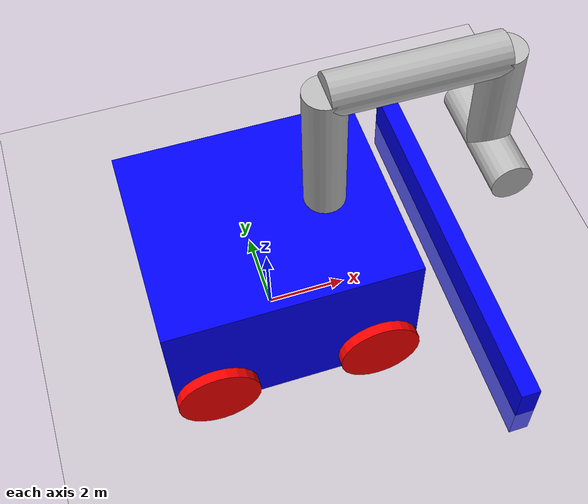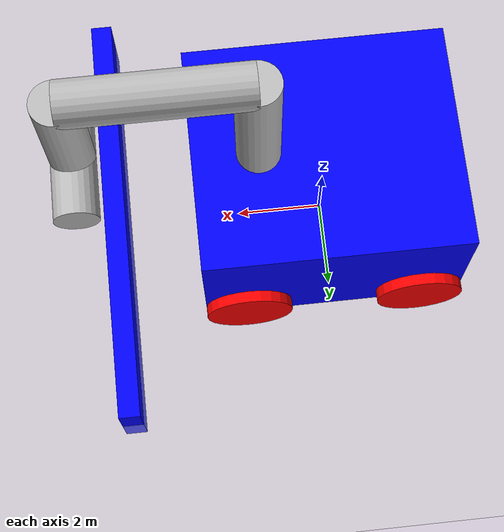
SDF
<sdf version="1.8">
 <world name="car_world">
  <plugin filename="libignition-gazebo-sensors-system.so" name="ignition::gazebo::systems::Sensors">
   <render_engine>ogre2</render_engine>
  </plugin>
  <physics name="1ms" type="ignored">
   <max_step_size>0.001</max_step_size>
   <real_time_factor>1.0</real_time_factor>
  </physics>
  <plugin filename="libignition-gazebo-physics-system.so" name="ignition::gazebo::systems::Physics"/>
  <plugin filename="libignition-gazebo-user-commands-system.so" name="ignition::gazebo::systems::UserCommands"/>
  <plugin filename="libignition-gazebo-scene-broadcaster-system.so" name="ignition::gazebo::systems::SceneBroadcaster"/>
  <plugin filename="libignition-gazebo-imu-system.so" name="ignition::gazebo::systems::Imu"/>
  <plugin filename="libignition-gazebo-contact-system.so" name="ignition::gazebo::systems::Contact"/>
  <plugin filename="libignition-gazebo-sensors-system.so" name="ignition::gazebo::systems::Sensors">
   <render_engine>ogre2</render_engine>
  </plugin>
  <light type="directional" name="sun">
   <pose>0 0 10 0 0 0</pose>
   <diffuse>0.8 0.8 0.8 1</diffuse>
   <specular>0.2 0.2 0.2 1</specular>
   <attenuation>
    <range>1000</range>
    <constant>0.9</constant>
    <linear>0.01</linear>
    <quadratic>0.001</quadratic>
   </attenuation>
   <direction>-0.5 0.1 -0.9</direction>
  </light>
  <model name="ground_plane">
   <static>true</static>
   <link name="link">
    <collision name="collision"><geometry><plane><normal>0 0 1</normal></plane></geometry></collision>
    <visual name="visual">
     <geometry><plane><normal>0 0 1</normal><size>100 100</size></plane></geometry>
     <material>
      <ambient>0.8 0.8 0.8 1</ambient>
      <diffuse>0.8 0.8 0.8 1</diffuse>
      <specular>0.8 0.8 0.8 1</specular>
     </material>
    </visual>
   </link>
  </model>
  <model name="wall">
   <static>true</static>
   <pose>5 0 0 0 0 0</pose>
   <link name="box">
    <visual name="visual">
     <geometry><box><size>0.5 10.0 2.0</size></box></geometry>
     <material>
      <ambient>0.0 0.0 1.0 1</ambient>
      <diffuse>0.0 0.0 1.0 1</diffuse>
      <specular>0.0 0.0 1.0 1</specular>
     </material>
    </visual>
    <collision name="collision"><geometry><box><size>0.5 10.0 2.0</size></box></geometry></collision>
   </link>
   <plugin filename="libignition-gazebo-touchplugin-system.so" name="ignition::gazebo::systems::TouchPlugin">
    <target>vehicle_blue</target>
    <namespace>wall</namespace>
    <time>0.001</time>
    <enabled>true</enabled>
   </plugin>
   <sensor name="sensor_contact" type="contact"><contact><collision>collision</collision></contact></sensor>
  </model>
  <model name="vehicle_blue" canonical_link="chassis">
   <pose relative_to="world">0 0 1.75 0 0 0</pose>
   <link name="chassis">
    <pose relative_to="__model__">0 0 0.4 0 0 0</pose>
    <inertial>
     <mass>1.14395</mass>
     <inertia>
      <ixx>0.095329</ixx>
      <ixy>0</ixy>
      <ixz>0</ixz>
      <iyy>0.381317</iyy>
      <iyz>0</iyz>
      <izz>0.476646</izz>
     </inertia>
    </inertial>
    <visual name="visual">
     <geometry><box><size>6.0 5.2 3.5</size></box></geometry>
     <material>
      <ambient>0.0 0.0 1.0 1</ambient>
      <diffuse>0.0 0.0 1.0 1</diffuse>
      <specular>0.0 0.0 1.0 1</specular>
     </material>
    </visual>
    <collision name="collision"><geometry><box><size>6.0 5.2 3.5</size></box></geometry></collision>
    <sensor name="imu_sensor" type="imu">
     <always_on>true</always_on>
     <update_rate>50</update_rate>
     <visualize>true</visualize>
     <topic>/imu</topic>
     <imu>
      <angular_velocity><x>0</x><y>0</y><z>0</z></angular_velocity>
      <linear_acceleration><x>0</x><y>0</y><z>0</z></linear_acceleration>
     </imu>
    </sensor>
    <sensor name="gpu_lidar" type="gpu_lidar">
     <pose relative_to="lidar_frame">0 0 0 0 0 0</pose>
     <topic>lidar</topic>
     <update_rate>10</update_rate>
     <ray>
      <scan>
       <horizontal>
        <samples>640</samples>
        <resolution>1</resolution>
        <min_angle>-1.396263</min_angle>
        <max_angle>1.396263</max_angle>
       </horizontal>
       <vertical>
        <samples>1</samples>
        <resolution>0.01</resolution>
        <min_angle>0</min_angle>
        <max_angle>0</max_angle>
       </vertical>
      </scan>
      <range><min>0.08</min><max>10.0</max><resolution>0.01</resolution></range>
     </ray>
     <always_on>1</always_on>
     <visualize>true</visualize>
    </sensor>
   </link>
   <frame name="lidar_frame" attached_to="chassis"><pose>0.8 0 0.5 0 0 0</pose></frame>
   <link name="back_left_wheel">
    <pose relative_to="chassis">-2.0 2.6 -1.15 -1.5707 0 0</pose>
    <inertial>
     <mass>1</mass>
     <inertia><ixx>0.043333</ixx><ixy>0</ixy><ixz>0</ixz><iyy>0.043333</iyy><iyz>0</iyz><izz>0.08</izz></inertia>
    </inertial>
    <visual name="visual">
     <geometry><cylinder><radius>1</radius><length>0.5</length></cylinder></geometry>
     <material>
      <ambient>1.0 0.0 0.0 1</ambient>
      <diffuse>1.0 0.0 0.0 1</diffuse>
      <specular>1.0 0.0 0.0 1</specular>
     </material>
    </visual>
    <collision name="collision">
     <geometry><cylinder><radius>5</radius><length>1</length></cylinder></geometry>
    </collision>
   </link>
   <link name="back_right_wheel">
    <pose relative_to="chassis">-2.0 -2.6 -1.15 -1.5707 0 0</pose>
    <inertial>
     <mass>1</mass>
     <inertia><ixx>0.043333</ixx><ixy>0</ixy><ixz>0</ixz><iyy>0.043333</iyy><iyz>0</iyz><izz>0.08</izz></inertia>
    </inertial>
    <visual name="visual">
     <geometry><cylinder><radius>1</radius><length>0.5</length></cylinder></geometry>
     <material>
      <ambient>1.0 0.0 0.0 1</ambient>
      <diffuse>1.0 0.0 0.0 1</diffuse>
      <specular>1.0 0.0 0.0 1</specular>
     </material>
    </visual>
    <collision name="collision">
     <geometry><cylinder><radius>5</radius><length>1</length></cylinder></geometry>
    </collision>
   </link>
   <link name="front_left_wheel">
    <pose relative_to="chassis">2.0 2.6 -1.15 -1.5707 0 0</pose>
    <inertial>
     <mass>1</mass>
     <inertia><ixx>0.043333</ixx><ixy>0</ixy><ixz>0</ixz><iyy>0.043333</iyy><iyz>0</iyz><izz>0.08</izz></inertia>
    </inertial>
    <visual name="visual">
     <geometry><cylinder><radius>1</radius><length>0.5</length></cylinder></geometry>
     <material>
      <ambient>1.0 0.0 0.0 1</ambient>
      <diffuse>1.0 0.0 0.0 1</diffuse>
      <specular>1.0 0.0 0.0 1</specular>
     </material>
    </visual>
    <collision name="collision">
     <geometry><cylinder><radius>1</radius><length>0.5</length></cylinder></geometry>
    </collision>
   </link>
   <link name="front_right_wheel">
    <pose relative_to="chassis">2.0 -2.6 -1.15 -1.5707 0 0</pose>
    <inertial>
     <mass>1</mass>
     <inertia><ixx>0.043333</ixx><ixy>0</ixy><ixz>0</ixz><iyy>0.043333</iyy><iyz>0</iyz><izz>0.08</izz></inertia>
    </inertial>
    <visual name="visual">
     <geometry><cylinder><radius>1</radius><length>0.5</length></cylinder></geometry>
     <material>
      <ambient>1.0 0.0 0.0 1</ambient>
      <diffuse>1.0 0.0 0.0 1</diffuse>
      <specular>1.0 0.0 0.0 1</specular>
     </material>
    </visual>
    <collision name="collision">
     <geometry><cylinder><radius>1</radius><length>0.5</length></cylinder></geometry>
    </collision>
   </link>
   <link name="Upright_cylinder">
    <pose relative_to="chassis">1.5 0 3.5   0 0 0</pose>
    <inertial>
     <mass>1</mass>
     <inertia><ixx>0.043333</ixx><ixy>0</ixy><ixz>0</ixz><iyy>0.043333</iyy><iyz>0</iyz><izz>0.08</izz></inertia>
    </inertial>
    <visual name="visual">
     <geometry><cylinder><radius>0.5</radius><length>3.5</length></cylinder></geometry>
    </visual>
    <collision name="collision">
     <geometry><cylinder><radius>0.5</radius><length>3.5</length></cylinder></geometry>
    </collision>
   </link>
   <link name="Sleeping_cylinder">
    <pose relative_to="chassis">3.5  0 5.15 -1.57 0 1.57</pose>
    <inertial>
     <mass>1</mass>
     <inertia><ixx>0.043333</ixx><ixy>0</ixy><ixz>0</ixz><iyy>0.043333</iyy><iyz>0</iyz><izz>0.08</izz></inertia>
    </inertial>
    <visual name="visual">
     <geometry><cylinder><radius>0.5</radius><length>4.0</length></cylinder></geometry>
    </visual>
    <collision name="collision">
     <geometry><cylinder><radius>0.5</radius><length>4.0</length></cylinder></geometry>
    </collision>
   </link>
   <link name="Down_arm">
    <pose relative_to="chassis">5.5 0 3.825 0 0 0</pose>
    <inertial>
     <mass>1</mass>
     <inertia><ixx>0.043333</ixx><ixy>0</ixy><ixz>0</ixz><iyy>0.043333</iyy><iyz>0</iyz><izz>0.08</izz></inertia>
    </inertial>
    <visual name="visual">
     <geometry><cylinder><radius>0.5</radius><length>2.85</length></cylinder></geometry>
    </visual>
    <collision name="collision">
     <geometry><cylinder><radius>0.5</radius><length>2.85</length></cylinder></geometry>
    </collision>
   </link>
   <link name="sleeping_cylinder_2">
    <pose relative_to="chassis">5.5 0 2.4 -1.57 0 0</pose>
    <inertial>
     <mass>1</mass>
     <inertia><ixx>0.043333</ixx><ixy>0</ixy><ixz>0</ixz><iyy>0.043333</iyy><iyz>0</iyz><izz>0.08</izz></inertia>
    </inertial>
    <visual name="visual">
     <geometry><cylinder><radius>0.5</radius><length>2.85</length></cylinder></geometry>
    </visual>
    <collision name="collision">
     <geometry><cylinder><radius>0.5</radius><length>2.85</length></cylinder></geometry>
    </collision>
   </link>
   <joint name="back_left_wheel_joint" type="revolute">
    <pose relative_to="back_left_wheel"/>
    <parent>chassis</parent>
    <child>back_left_wheel</child>
    <axis>
     <xyz expressed_in="__model__">0 1 0</xyz>
     <limit><lower>-1.79769e+308</lower><upper>1.79769e+308</upper></limit>
    </axis>
   </joint>
   <joint name="back_right_wheel_joint" type="revolute">
    <pose relative_to="back_right_wheel"/>
    <parent>chassis</parent>
    <child>back_right_wheel</child>
    <axis>
     <xyz expressed_in="__model__">0 1 0</xyz>
     <limit><lower>-1.79769e+308</lower><upper>1.79769e+308</upper></limit>
    </axis>
   </joint>
   <joint name="front_right_wheel_joint" type="revolute">
    <pose relative_to="front_right_wheel"/>
    <parent>chassis</parent>
    <child>front_right_wheel</child>
    <axis>
     <xyz expressed_in="__model__">0 1 0</xyz>
     <limit><lower>-1.79769e+308</lower><upper>1.79769e+308</upper></limit>
    </axis>
   </joint>
   <joint name="front_left_wheel_joint" type="revolute">
    <pose relative_to="front_left_wheel"/>
    <parent>chassis</parent>
    <child>front_left_wheel</child>
    <axis>
     <xyz expressed_in="__model__">0 1 0</xyz>
     <limit><lower>-1.79769e+308</lower><upper>1.79769e+308</upper></limit>
    </axis>
   </joint>
   <joint name="Upright_cylinder_joint" type="revolute">
    <pose relative_to="Upright_cylinder"/>
    <parent>chassis</parent>
    <child>Upright_cylinder</child>
    <axis>
     <xyz expressed_in="__model__">0 0 1</xyz>
     <limit><lower>-1.79769e+308</lower><upper>1.79769e+308</upper></limit>
    </axis>
   </joint>
   <joint name="sleeping_cylinder_2_joint" type="revolute">
    <pose relative_to="sleeping_cylinder_2"/>
    <parent>Down_arm</parent>
    <child>sleeping_cylinder_2</child>
    <axis>
     <xyz expressed_in="__model__">0 0 1</xyz>
     <limit><lower>-1.79769e+308</lower><upper>1.79769e+308</upper></limit>
    </axis>
   </joint>
   <joint name="Down_arm_joint" type="prismatic">
    <pose relative_to="Down_arm"/>
    <parent>Sleeping_cylinder</parent>
    <child>Down_arm</child>
    <axis>
     <xyz expressed_in="__model__ ">1 0 0</xyz>
     <limit><lower>-1.57</lower><upper>1.57</upper></limit>
     <dynamics><damping>0.1</damping><friction>0.05</friction></dynamics>
    </axis>
   </joint>
   <joint name="Sleeping_cylinder_joint" type="fixed">
    <pose relative_to="Sleeping_cylinder"/>
    <parent>Upright_cylinder</parent>
    <child>Sleeping_cylinder</child>
   </joint>
   <plugin filename="libignition-gazebo-diff-drive-system.so" name="ignition::gazebo::systems::DiffDrive">
    <left_joint>back_left_wheel_joint</left_joint>
    <right_joint>back_right_wheel_joint</right_joint>
    <wheel_separation>5.2</wheel_separation>
    <wheel_radius>1</wheel_radius>
    <odom_publish_frequency>1</odom_publish_frequency>
    <topic>cmd_vel</topic>
   </plugin>
  </model>
 </world>
</sdf>
